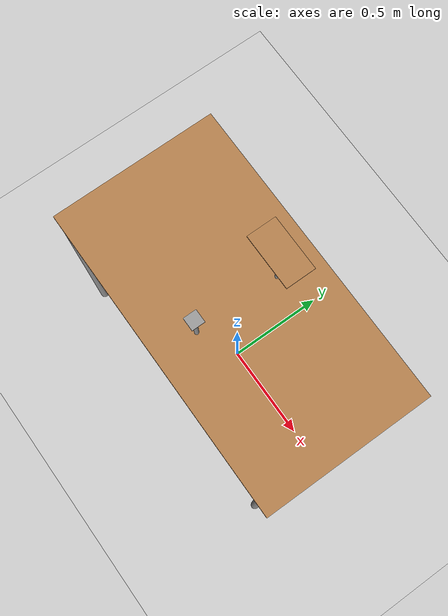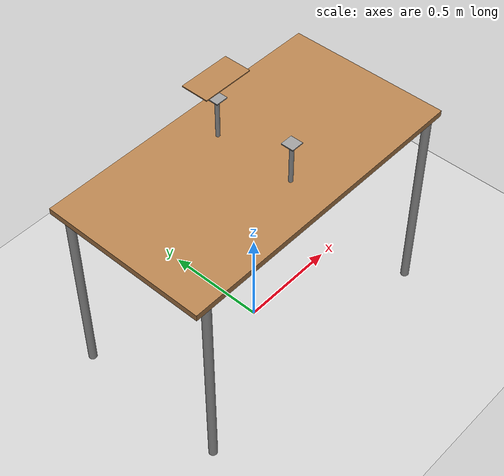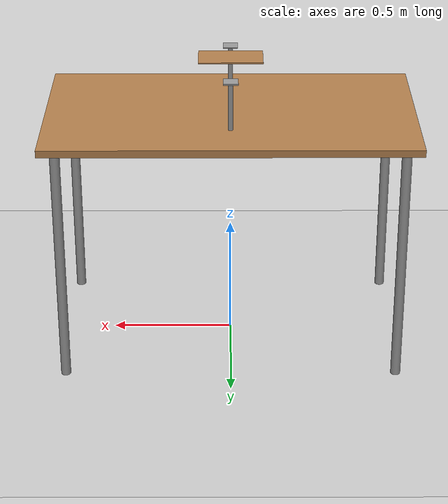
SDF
<?xml version="1.0" ?>
<sdf version="1.8">
  <world name="table_object_setup">

    <!-- LIGHT -->

    <light type="directional" name="sun">
        <cast_shadows>true</cast_shadows>
        <pose>0 0 10 0 0 0</pose>
        <diffuse>0.8 0.8 0.8 1</diffuse>
        <specular>0.2 0.2 0.2 1</specular>
        <attenuation>
            <range>1000</range>
            <constant>0.9</constant>
            <linear>0.01</linear>
            <quadratic>0.001</quadratic>
        </attenuation>
        <direction>-0.5 0.1 -0.9</direction>
    </light>

                            <!--      Ground Plane      -->

    <!-- Ground Plane -->
    <model name="ground_plane">
        <static>true</static>
        <link name="link">
          <collision name="collision">
            <geometry>
              <plane>
                <normal>0 0 1</normal>
                <size>10 10</size>
              </plane>
            </geometry>
          </collision>
          <visual name="visual">
            <geometry>
              <plane>
                <normal>0 0 1</normal>
                <size>10 10</size>
              </plane>
            </geometry>

            <!-- COLOR!-->
            <material>
              <ambient>0.8 0.8 0.8 1</ambient>
              <diffuse>0.8 0.8 0.8 1</diffuse>
              <specular>0.5 0.5 0.5 1</specular>
            </material>
          </visual>
        </link>
      </model>

                                <!-- OBJECT MODEL -->

    <model name="wood_object">
        <link name="wood">
            <pose>0 0.2 1.3200 0 0 0</pose>
            <collision name="surface">
                <geometry>
                    <box>
                        <size>0.25 0.1333 0.0050</size>
                    </box>
                </geometry>
                <surface>
                    <friction>
                        <ode>
                            <mu>0.6</mu>
                            <mu2>0.6</mu2>
                        </ode>
                    </friction>
                </surface>
            </collision>
            <visual name="visual1">
                <geometry>
                    <box>
                        <size>0.25 0.1333 0.005</size>
                    </box>
                </geometry>
                <material>
                    <diffuse>1.0 1.0 1.0</diffuse>
                    <script>
                        <uri>file://media/materials/scripts/gazebo.material</uri>
                        <name>Gazebo/Wood</name>
                    </script>
                    <!-- PBR for Ignition, material scripts for gazebo classic-->
                    <pbr>
                        <metal>
                            <albedo_map>https://fuel.gazebosim.org/1.0/openrobotics/models/table/4/files/Table_Diffuse.jpg</albedo_map>
                        </metal>
                    </pbr>
                </material>
            </visual>
        </link>
    </model>

                                <!-- Table and SUpports Model -->

    <model name="Table">
        <static>true</static>
        <link name="table_link">
          <collision name="surface">
              <pose>0 0 1.0 0 0 0</pose>
              <geometry>
                  <box>
                      <size>1.5 0.8 0.03</size>
                  </box>
              </geometry>
              <surface>
                  <friction>
                      <ode>
                          <mu>0.6</mu>
                          <mu2>0.6</mu2>
                      </ode>
                  </friction>
              </surface>
          </collision>
          <visual name="visual1">
              <pose>0 0 1.0 0 0 0</pose>
              <geometry>
                  <box>
                      <size>1.5 0.8 0.03</size>
                  </box>
              </geometry>
              <material>
                  <diffuse>1.0 1.0 1.0</diffuse>
                  <script>
                      <uri>file://media/materials/scripts/gazebo.material</uri>
                      <name>Gazebo/Wood</name>
                  </script>
                  <!-- PBR for Ignition, material scripts for gazebo classic-->
                  <pbr>
                      <metal>
                          <albedo_map>https://fuel.gazebosim.org/1.0/openrobotics/models/table/4/files/Table_Diffuse.jpg</albedo_map>
                      </metal>
                  </pbr>
              </material>
          </visual>
          <collision name="front_left_leg">
              <pose>0.68 0.38 0.5 0 0 0</pose>
              <geometry>
                  <cylinder>
                      <radius>0.02</radius>
                      <length>1.0</length>
                  </cylinder>
              </geometry>
          </collision>
          <visual name="front_left_leg">
              <pose>0.68 0.38 0.5 0 0 0</pose>
              <geometry>
                  <cylinder>
                      <radius>0.02</radius>
                      <length>1.0</length>
                  </cylinder>
              </geometry>
              <material>
                  <diffuse>0.5 0.5 0.5</diffuse>
                  <script>
                      <uri>file://media/materials/scripts/gazebo.material</uri>
                      <name>Gazebo/Grey</name>
                  </script>
              </material>
          </visual>
          <collision name="front_right_leg">
              <pose>0.68 -0.38 0.5 0 0 0</pose>
              <geometry>
                  <cylinder>
                      <radius>0.02</radius>
                      <length>1.0</length>
                  </cylinder>
              </geometry>
          </collision>
          <visual name="front_right_leg">
              <pose>0.68 -0.38 0.5 0 0 0</pose>
              <geometry>
                  <cylinder>
                      <radius>0.02</radius>
                      <length>1.0</length>
                  </cylinder>
              </geometry>
              <material>
                  <diffuse>0.5 0.5 0.5</diffuse>
                  <script>
                      <uri>file://media/materials/scripts/gazebo.material</uri>
                      <name>Gazebo/Grey</name>
                  </script>
              </material>
          </visual>
          <collision name="back_right_leg">
              <pose>-0.68 -0.38 0.5 0 0 0</pose>
              <geometry>
                  <cylinder>
                      <radius>0.02</radius>
                      <length>1.0</length>
                  </cylinder>
              </geometry>
          </collision>
          <visual name="back_right_leg">
              <pose>-0.68 -0.38 0.5 0 0 0</pose>
              <geometry>
                  <cylinder>
                      <radius>0.02</radius>
                      <length>1.0</length>
                  </cylinder>
              </geometry>
              <material>
                  <diffuse>0.5 0.5 0.5</diffuse>
                  <script>
                      <uri>file://media/materials/scripts/gazebo.material</uri>
                      <name>Gazebo/Grey</name>
                  </script>
              </material>
          </visual>
          <collision name="back_left_leg">
              <pose>-0.68 0.38 0.5 0 0 0</pose>
              <geometry>
                  <cylinder>
                      <radius>0.02</radius>
                      <length>1.0</length>
                  </cylinder>
              </geometry>
          </collision>
          <visual name="back_left_leg">
              <pose>-0.68 0.38 0.5 0 0 0</pose>
              <geometry>
                  <cylinder>
                      <radius>0.02</radius>
                      <length>1.0</length>
                  </cylinder>
              </geometry>
              <material>
                  <diffuse>0.5 0.5 0.5</diffuse>
                  <script>
                      <uri>file://media/materials/scripts/gazebo.material</uri>
                      <name>Gazebo/Grey</name>
                  </script>
              </material>
          </visual>
        </link>

                            <!-- SUPPORT LINKS -->

                            <!-- START SUPPORT -->

        <link name="body_support_start">
            <pose relative_to="table_link">0 0.2 1.1150 0 0 0</pose>

            <collision name="body_collision">
                <geometry>
                    <cylinder>
                        <radius>0.01</radius>
                        <length>0.2</length>
                    </cylinder>
                </geometry>
            </collision>
            <visual name="body_visual">
                <geometry>
                    <cylinder>
                        <radius>0.01</radius>
                        <length>0.2</length>
                    </cylinder>
                </geometry>
                <material>
                    <diffuse>0.5 0.5 0.5</diffuse>
                    <script>
                        <uri>file://media/materials/scripts/gazebo.material</uri>
                        <name>Gazebo/Grey</name>
                    </script>
                </material>
            </visual>
        </link>

        <link name="platform_support_start">
            <pose relative_to="body_support_start">0 0 0.1025 0 0 0</pose>

            <collision name="platform_collision">
                <geometry>
                    <box>
                        <size>0.06 0.06 0.005</size>
                    </box>
                </geometry>
            </collision>
            <visual name="platform_visual">
                <geometry>
                    <box>
                        <size>0.06 0.06 0.005</size>
                    </box>
                </geometry>
                <material>
                    <diffuse>0.5 0.5 0.5</diffuse>
                    <script>
                        <uri>file://media/materials/scripts/gazebo.material</uri>
                        <name>Gazebo/Grey</name>
                    </script>
                </material>
            </visual>
        </link>

                            <!-- GOAL SUPPORT -->

        <link name="body_support_goal">
            <pose relative_to="table_link">0 -0.2 1.115 0 0 0</pose>

            <collision name="body_collision">
                <geometry>
                    <cylinder>
                        <radius>0.01</radius>
                        <length>0.2</length>
                    </cylinder>
                </geometry>
            </collision>
            <visual name="body_visual">
                <geometry>
                    <cylinder>
                        <radius>0.01</radius>
                        <length>0.2</length>
                    </cylinder>
                </geometry>
                <material>
                    <diffuse>0.5 0.5 0.5</diffuse>
                    <script>
                        <uri>file://media/materials/scripts/gazebo.material</uri>
                        <name>Gazebo/Grey</name>
                    </script>
                </material>
            </visual>
        </link>

        <link name="platform_support_goal">
            <pose relative_to="body_support_goal">0 0 0.1025 0 0 0</pose>

            <collision name="platform_collision">
                <geometry>
                    <box>
                        <size>0.06 0.06 0.005</size>
                    </box>
                </geometry>
            </collision>
            <visual name="platform_visual">
                <geometry>
                    <box>
                        <size>0.06 0.06 0.005</size>
                    </box>
                </geometry>
                <material>
                    <diffuse>0.5 0.5 0.5</diffuse>
                    <script>
                        <uri>file://media/materials/scripts/gazebo.material</uri>
                        <name>Gazebo/Grey</name>
                    </script>
                </material>
            </visual>
        </link>

                                <!-- START: weld support to table  -->

        <joint name="support_table_start" type="fixed">
            <parent>table_link</parent>
            <child>body_support_start</child>
            <pose>0 0.2 1.115 0 0 0</pose>
        </joint>

                                <!-- START: weld platform to support body -->

        <joint name="platform_body_start" type="fixed">
            <parent>body_support_start</parent>
            <child>platform_support_start</child>
            <pose>0 0 0.1025 0 0 0</pose>
        </joint>

                                <!-- GOAL: weld support to table  -->

        <joint name="support_table_goal" type="fixed">
            <parent>table_link</parent>
            <child>body_support_goal</child>
            <pose>0 -0.2 1.115 0 0 0</pose>
        </joint>

                                <!-- GOAL: weld platform to support body -->

        <joint name="platform_body_goal" type="fixed">
            <parent>body_support_goal</parent>
            <child>platform_support_goal</child>
            <pose>0 0 0.1025 0 0 0</pose>
        </joint>

    </model>
  </world>
</sdf>
